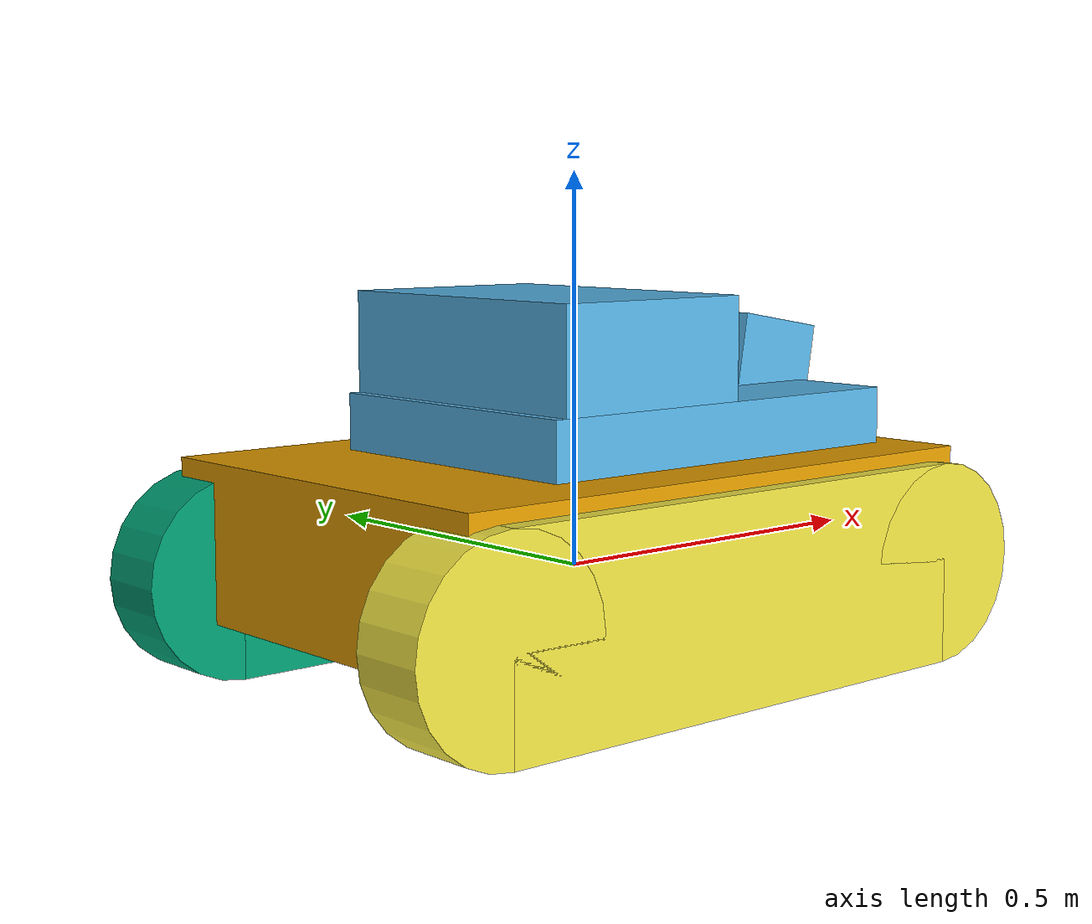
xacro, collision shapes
<?xml version='1.0' encoding='utf-8'?>
<robot name='ctu_cras_norlab_marmotte_sensor_config_1' xmlns:xacro='http://ros.org/wiki/xacro'>
  <xacro:arg name="name" default="ctu_cras_norlab_marmotte_sensor_config_1"/>
  <xacro:property name="robot_namespace" value="$(arg name)"/>
  <link name='${robot_namespace}/base_link'>
    <collision name='base_link_collision_bottom'>
      <origin xyz='0 0 0.046' rpy='0 0 0'/>
      <geometry>
        <box size='0.8 0.5709 0.2'/>
      </geometry>
    </collision>
    <visual name='base_link_visual'>
      <origin xyz='0 0 -0.135' rpy='0 0 1.57'/>
      <geometry>
        <mesh filename='package://ctu_cras_norlab_marmotte_sensor_config_1/meshes/hd2_marble_base_body_metric.dae' scale='1 1 1'/>
      </geometry>
    </visual>
  </link>
  <link name='${robot_namespace}/sensor_rack'>
    <collision name='collision_base'>
      <origin xyz='0.275 0.2 0.075' rpy='0 0 0'/>
      <geometry>
        <box size='0.56 0.4 0.15'/>
      </geometry>
    </collision>
    <collision name='collision_top'>
      <origin xyz='0.15 0.2 0.215' rpy='0 0 0'/>
      <geometry>
        <box size='0.28 0.4 0.13'/>
      </geometry>
    </collision>
    <collision name='collision_laser'>
      <origin xyz='0.505 0.2 0.17' rpy='0 0.17 0'/>
      <geometry>
        <box size='0.135 0.13 0.13'/>
      </geometry>
    </collision>
    <visual name='sensor_rack_visual'>
      <origin xyz='0 0 0.0' rpy='0 0 0'/>
      <geometry>
        <mesh filename='package://ctu_cras_norlab_marmotte_sensor_config_1/meshes/sensor_rack_lowres_shallow_laser.dae' scale='1 1 1'/>
      </geometry>
    </visual>
  </link>

  <joint name='base_link_JOINT_0' type='fixed'>
    <origin xyz='-0.198535 -0.198243 0.068995' rpy='0 0 0'/>
    <parent link='${robot_namespace}/base_link'/>
    <child link='${robot_namespace}/sensor_rack'/>
  </joint>

  <link name='${robot_namespace}/left_track'>
    <collision name='front_left_wheel_link_collision'>
      <origin xyz='0.36 0 0' rpy='1.5708 -0 0'/>
      <geometry>
        <cylinder radius='0.129' length='0.1'/>
      </geometry>
    </collision>
    <collision name='rear_left_wheel_link_collision'>
      <origin xyz='-0.36 0 0' rpy='1.5708 -0 0'/>
      <geometry>
        <cylinder radius='0.129' length='0.1'/>
      </geometry>
    </collision>
    <collision name='left_track_box_collision'>
      <geometry>
        <box size='0.72 0.1 0.258'/>
      </geometry>
    </collision>
  </link>
  <link name='${robot_namespace}/right_track'>
    <collision name='front_right_wheel_link_collision'>
      <origin xyz='0.36 0 0' rpy='1.5708 -0 0'/>
      <geometry>
        <cylinder radius='0.129' length='0.1'/>
      </geometry>
    </collision>
    <collision name='rear_right_wheel_link_collision'>
      <origin xyz='-0.36 0 0' rpy='1.5708 -0 0'/>
      <geometry>
        <cylinder radius='0.129' length='0.1'/>
      </geometry>
    </collision>
    <collision name='right_track_box_collision'>
      <geometry>
        <box size='0.72 0.1 0.258'/>
      </geometry>
    </collision>
  </link>
  <joint name='left_track_j' type='fixed'>
    <origin xyz='0 0.26 0' rpy='0 0 0'/>
    <parent link='${robot_namespace}/base_link'/>
    <child link='${robot_namespace}/left_track'/>
  </joint>
  <joint name='right_track_j' type='fixed'>
    <origin xyz='0 -0.26 0' rpy='0 0 0'/>
    <parent link='${robot_namespace}/base_link'/>
    <child link='${robot_namespace}/right_track'/>
  </joint>
</robot>
